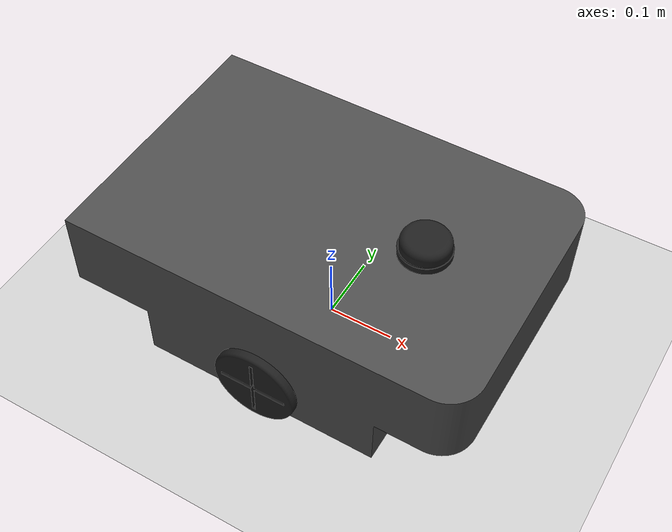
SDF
<sdf version="1.6">
 <world name="default">
  <scene><ambient>0 0 0 1</ambient><shadows>0</shadows><background>0.7 0.7 0.7 1</background></scene>
  <light name="sun" type="directional">
   <pose>0 0 10 0 -0 0</pose>
   <diffuse>0.8 0.8 0.8 1</diffuse>
   <specular>0.2 0.2 0.2 1</specular>
   <attenuation>
    <range>1000</range>
    <constant>0.9</constant>
    <linear>0.01</linear>
    <quadratic>0.001</quadratic>
   </attenuation>
   <direction>-0.5 0.1 -0.9</direction>
  </light>
  <model name="ground_plane">
   <static>1</static>
   <link name="link">
    <collision name="collision">
     <geometry><plane><normal>0 0 1</normal><size>100 100</size></plane></geometry>
     <surface>
      <contact><collide_bitmask>65535</collide_bitmask></contact>
      <friction><ode><mu>100</mu><mu2>50</mu2></ode></friction>
     </surface>
    </collision>
    <visual name="visual">
     <cast_shadows>0</cast_shadows>
     <geometry><plane><normal>0 0 1</normal><size>100 100</size></plane></geometry>
     <material>
      <script><uri>file://media/materials/scripts/gazebo.material</uri><name>Gazebo/Grey</name></script>
     </material>
    </visual>
   </link>
  </model>
  <physics name="default_physics" default="0" type="ode">
   <real_time_update_rate>1000</real_time_update_rate>
   <max_step_size>0.001</max_step_size>
   <real_time_factor>1</real_time_factor>
   <ode>
    <solver>
     <type>quick</type>
     <iters>150</iters>
     <precon_iters>0</precon_iters>
     <sor>1.4</sor>
     <use_dynamic_moi_rescaling>1</use_dynamic_moi_rescaling>
    </solver>
    <constraints>
     <cfm>1e-05</cfm>
     <erp>0.2</erp>
     <contact_max_correcting_vel>2000</contact_max_correcting_vel>
     <contact_surface_layer>0.01</contact_surface_layer>
    </constraints>
   </ode>
  </physics>
  <gravity>0 0 -9.8</gravity>
  <magnetic_field>6e-06 2.3e-05 -4.2e-05</magnetic_field>
  <atmosphere type="adiabatic"/>
  <audio><device>default</device></audio>
  <spherical_coordinates>
   <surface_model>EARTH_WGS84</surface_model>
   <latitude_deg>0</latitude_deg>
   <longitude_deg>0</longitude_deg>
   <elevation>0</elevation>
   <heading_deg>0</heading_deg>
  </spherical_coordinates>
  <model name="agv_ohm">
   <link name="base_footprint">
    <inertial>
     <pose>0.016805 0 0.036407 0 -0 0</pose>
     <mass>0.949735</mass>
     <inertia>
      <ixx>0.0100677</ixx>
      <ixy>-1.22941e-05</ixy>
      <ixz>-0.0030548</ixz>
      <iyy>0.0123409</iyy>
      <iyz>-5.01209e-06</iyz>
      <izz>0.00737262</izz>
     </inertia>
    </inertial>
    <collision name="base_footprint_fixed_joint_lump__base_link_collision">
     <pose>0 0 0.11 0 -0 0</pose>
     <geometry><box><size>0.6 0.4 0.2</size></box></geometry>
    </collision>
    <collision name="base_footprint_fixed_joint_lump__caster_back_link_collision_1">
     <pose>-0.2 1e-06 0.009 -1.57 0 0</pose>
     <geometry><box><size>0.003 0.032 0.003</size></box></geometry>
     <surface>
      <contact><ode><kp>1e+06</kp><kd>100</kd><max_vel>1</max_vel><min_depth>0.001</min_depth></ode></contact>
      <friction><ode><mu>0.1</mu><mu2>0.1</mu2></ode></friction>
     </surface>
    </collision>
    <collision name="base_footprint_fixed_joint_lump__caster_font_link_collision_2">
     <pose>0.2 1e-06 0.009 -1.57 0 0</pose>
     <geometry><box><size>0.003 0.032 0.003</size></box></geometry>
     <surface>
      <contact><ode><kp>1e+06</kp><kd>100</kd><max_vel>1</max_vel><min_depth>0.001</min_depth></ode></contact>
      <friction><ode><mu>0.1</mu><mu2>0.1</mu2></ode></friction>
     </surface>
    </collision>
    <collision name="base_footprint_fixed_joint_lump__base_scan_collision_3">
     <pose>0.155 0 0.2235 0 -0 0</pose>
     <geometry><cylinder><length>0.0315</length><radius>0.055</radius></cylinder></geometry>
    </collision>
    <visual name="base_footprint_fixed_joint_lump__base_link_visual">
     <pose>0 0 0.01 0 -0 0</pose>
     <geometry>
      <mesh>
       <scale>0.001 0.001 0.001</scale>
       <uri>/home/agv/catkin_ws/src/agv_description/meshes/base_link.stl</uri>
      </mesh>
     </geometry>
     <material>
      <script><name>Gazebo/DarkGrey</name><uri>file://media/materials/scripts/gazebo.material</uri></script>
     </material>
    </visual>
    <visual name="base_footprint_fixed_joint_lump__base_scan_visual_1">
     <pose>0.14 0 0.2 0 -0 0</pose>
     <geometry>
      <mesh>
       <scale>0.001 0.001 0.001</scale>
       <uri>/home/agv/catkin_ws/src/agv_description/meshes/scan.stl</uri>
      </mesh>
     </geometry>
     <material>
      <script><name>Gazebo/FlatBlack</name><uri>file://media/materials/scripts/gazebo.material</uri></script>
     </material>
    </visual>
    <sensor name="imu" type="imu">
     <always_on>1</always_on>
     <visualize>0</visualize>
     <pose>-0.032 0 0.078 0 -0 0</pose>
    </sensor>
    <sensor name="lds_lfcd_sensor" type="ray">
     <visualize>1</visualize>
     <update_rate>5</update_rate>
     <ray>
      <scan>
       <horizontal>
        <samples>360</samples>
        <resolution>1</resolution>
        <min_angle>-3.14</min_angle>
        <max_angle>3.14</max_angle>
       </horizontal>
       <vertical><samples>1</samples><min_angle>0</min_angle><max_angle>0</max_angle></vertical>
      </scan>
      <range><min>0.3</min><max>25</max><resolution>0.015</resolution></range>
      <noise><type>gaussian</type><mean>0</mean><stddev>0.01</stddev></noise>
     </ray>
     <plugin name="gazebo_ros_lds_lfcd_controller" filename="libgazebo_ros_laser.so">
      <topicName>scan</topicName>
      <frameName>base_scan</frameName>
      <robotNamespace>/</robotNamespace>
     </plugin>
     <pose>0.14 0 0.23 0 -0 0</pose>
    </sensor>
   </link>
   <link name="wheel_left_link">
    <pose>0 0.2 0.0535 -1.57 0 0</pose>
    <inertial>
     <mass>0.0284989</mass>
     <inertia>
      <ixx>1.11756e-05</ixx>
      <ixy>-4.23698e-11</ixy>
      <ixz>-5.93817e-09</ixz>
      <iyy>1.11924e-05</iyy>
      <iyz>-1.44001e-11</iyz>
      <izz>2.07126e-05</izz>
     </inertia>
    </inertial>
    <collision name="wheel_left_link_collision">
     <geometry><cylinder><length>0.0254</length><radius>0.0635</radius></cylinder></geometry>
     <surface>
      <contact><ode><kp>500000</kp><kd>10</kd><max_vel>0.1</max_vel><min_depth>0.001</min_depth></ode></contact>
      <friction><ode><mu>0.1</mu><mu2>0.1</mu2><fdir1>1 0 0</fdir1></ode></friction>
     </surface>
    </collision>
    <visual name="wheel_left_link_visual">
     <pose>0 0 0 1.57 -0 0</pose>
     <geometry>
      <mesh>
       <scale>0.001 0.001 0.001</scale>
       <uri>/home/agv/catkin_ws/src/agv_description/meshes/wheel.stl</uri>
      </mesh>
     </geometry>
     <material>
      <script><name>Gazebo/FlatBlack</name><uri>file://media/materials/scripts/gazebo.material</uri></script>
     </material>
    </visual>
   </link>
   <joint name="wheel_left_joint" type="revolute">
    <child>wheel_left_link</child>
    <parent>base_footprint</parent>
    <axis>
     <xyz>0 1 0.000796</xyz>
     <limit><lower>-1e+16</lower><upper>1e+16</upper></limit>
     <dynamics><spring_reference>0</spring_reference><spring_stiffness>0</spring_stiffness></dynamics>
     <use_parent_model_frame>1</use_parent_model_frame>
    </axis>
   </joint>
   <link name="wheel_right_link">
    <pose>0 -0.2 0.0535 -1.57 0 0</pose>
    <inertial>
     <mass>0.0284989</mass>
     <inertia>
      <ixx>1.11756e-05</ixx>
      <ixy>-4.23698e-11</ixy>
      <ixz>-5.93817e-09</ixz>
      <iyy>1.11924e-05</iyy>
      <iyz>-1.44001e-11</iyz>
      <izz>2.07126e-05</izz>
     </inertia>
    </inertial>
    <collision name="wheel_right_link_collision">
     <geometry><cylinder><length>0.0254</length><radius>0.0635</radius></cylinder></geometry>
     <surface>
      <contact><ode><kp>500000</kp><kd>10</kd><max_vel>0.1</max_vel><min_depth>0.001</min_depth></ode></contact>
      <friction><ode><mu>0.1</mu><mu2>0.1</mu2><fdir1>1 0 0</fdir1></ode></friction>
     </surface>
    </collision>
    <visual name="wheel_right_link_visual">
     <pose>0 0 0 1.57 -0 0</pose>
     <geometry>
      <mesh>
       <scale>0.001 0.001 0.001</scale>
       <uri>/home/agv/catkin_ws/src/agv_description/meshes/wheel.stl</uri>
      </mesh>
     </geometry>
     <material>
      <script><name>Gazebo/FlatBlack</name><uri>file://media/materials/scripts/gazebo.material</uri></script>
     </material>
    </visual>
   </link>
   <joint name="wheel_right_joint" type="revolute">
    <child>wheel_right_link</child>
    <parent>base_footprint</parent>
    <axis>
     <xyz>0 1 0.000796</xyz>
     <limit><lower>-1e+16</lower><upper>1e+16</upper></limit>
     <dynamics><spring_reference>0</spring_reference><spring_stiffness>0</spring_stiffness></dynamics>
     <use_parent_model_frame>1</use_parent_model_frame>
    </axis>
   </joint>
   <plugin name="agv_ohm_controller" filename="libgazebo_ros_diff_drive.so">
    <commandTopic>cmd_vel</commandTopic>
    <odometryTopic>odom</odometryTopic>
    <odometryFrame>odom</odometryFrame>
    <odometrySource>world</odometrySource>
    <publishOdomTF>1</publishOdomTF>
    <robotBaseFrame>base_footprint</robotBaseFrame>
    <publishWheelTF>0</publishWheelTF>
    <publishTf>1</publishTf>
    <publishWheelJointState>1</publishWheelJointState>
    <legacyMode>0</legacyMode>
    <updateRate>30</updateRate>
    <leftJoint>wheel_left_joint</leftJoint>
    <rightJoint>wheel_right_joint</rightJoint>
    <wheelSeparation>0.355</wheelSeparation>
    <wheelDiameter>0.127</wheelDiameter>
    <wheelAcceleration>1</wheelAcceleration>
    <wheelTorque>10</wheelTorque>
    <rosDebugLevel>na</rosDebugLevel>
    <robotNamespace>/</robotNamespace>
   </plugin>
   <static>0</static>
   <plugin name="imu_plugin" filename="libgazebo_ros_imu.so">
    <alwaysOn>1</alwaysOn>
    <topicName>imu</topicName>
    <serviceName>imu_service</serviceName>
    <gaussianNoise>0.0</gaussianNoise>
    <updateRate>200</updateRate>
    <imu>
     <noise>
      <type>gaussian</type>
      <rate>
       <mean>0.0</mean>
       <stddev>2e-4</stddev>
       <bias_mean>0.0000075</bias_mean>
       <bias_stddev>0.0000008</bias_stddev>
      </rate>
      <accel>
       <mean>0.0</mean>
       <stddev>1.7e-2</stddev>
       <bias_mean>0.1</bias_mean>
       <bias_stddev>0.001</bias_stddev>
      </accel>
     </noise>
    </imu>
    <robotNamespace>/</robotNamespace>
    <bodyName>base_footprint</bodyName>
    <frameName>base_footprint</frameName>
    <xyzOffset>0.064 0 -0.156</xyzOffset>
    <rpyOffset>0 -0 0</rpyOffset>
   </plugin>
   <pose>0.000215 0.000449 0.009003 -3e-06 0.009942 -0.002262</pose>
  </model>
 </world>
</sdf>
